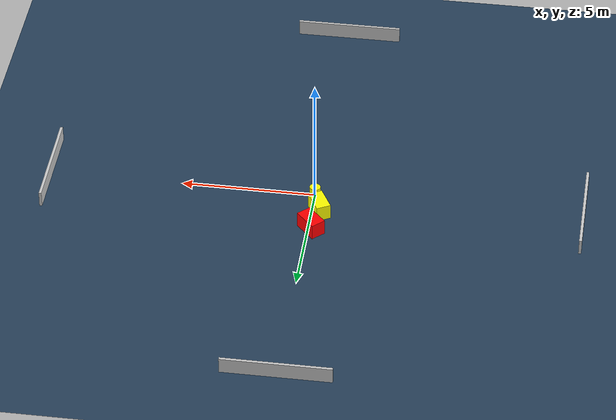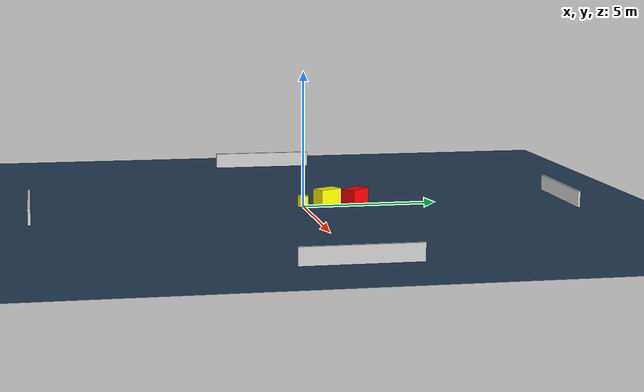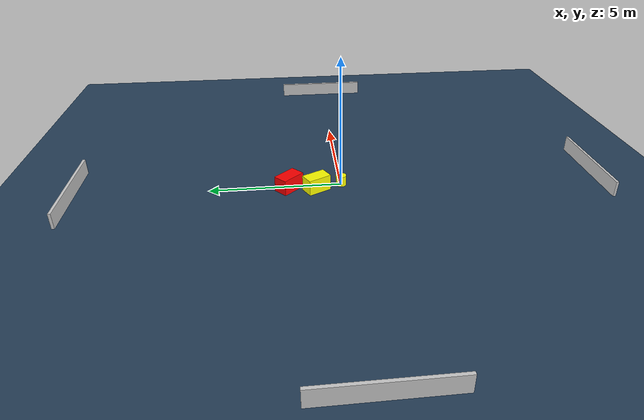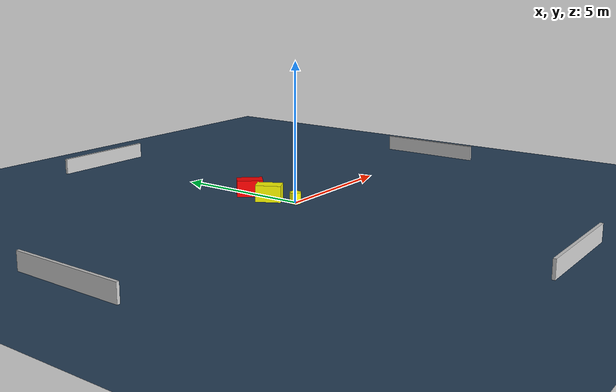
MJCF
<?xml version="1.0" ?>
<mujoco model="generated_environment">
  <option timestep="0.01" integrator="RK4" cone="elliptic"/>
  <default>
    <geom density="1"/>
  </default>
  <asset>
    <texture builtin="gradient" height="3072" name="skybox" rgb1="0.3 0.5 0.7" rgb2="0 0 0" type="skybox" width="512"/>
    <texture builtin="checker" height="300" name="groundplane" rgb1="0.2 0.3 0.4" rgb2="0.1 0.2 0.3" type="2d" width="300"/>
    <material name="groundplane" reflectance="0.2" texrepeat="5 5" texture="groundplane"/>
  </asset>
  <worldbody>
    <light dir="0 0 -1" directional="true" pos="0 0 1.5"/>
    <geom condim="3" friction="0.5 0.005 0.001" material="groundplane" name="floor" pos="0 0 0" size="0 0 0.05" type="plane"/>
    <body name="walls">
      <geom name="wall_1" condim="4" pos="-10.0 0.0 0.3" rgba="0.800000011920929 0.800000011920929 0.800000011920929 1.0" size="0.05 2.0 0.3" type="box"/>
      <geom name="wall_2" condim="4" pos="10.0 0.0 0.3" rgba="0.800000011920929 0.800000011920929 0.800000011920929 1.0" size="0.05 2.0 0.3" type="box"/>
      <geom name="wall_3" condim="4" pos="0.0 -10.0 0.3" rgba="0.800000011920929 0.800000011920929 0.800000011920929 1.0" size="2.0 0.05 0.3" type="box"/>
      <geom name="wall_4" condim="4" pos="0.0 10.0 0.3" rgba="0.800000011920929 0.800000011920929 0.800000011920929 1.0" size="2.0 0.05 0.3" type="box"/>
    </body>
    <body name="robot">
      <joint name="joint_x" type="slide" pos="0 0 0" axis="1 0 0"/>
      <joint name="joint_y" type="slide" pos="0 0 0" axis="0 1 0"/>
      <geom name="robot" type="cylinder" pos="0.0 0.0 0.2" size="0.2 0.2 0.0" mass="5.0" friction="1.0 0.005 0.0001" condim="4" rgba="1.0 1.0 0.0 1.0"/>
    </body>
    <body name="obstacle_1_movable">
      <geom name="obstacle_1_movable" condim="4" pos="-0.2872410885223962 0.9567867878171007 0.3" euler="0 0 208.18103959080483" friction="0.0 0.005 0.001" rgba="1.0 1.0 0.0 1.0" size="0.27035310321065437 0.4595306561950956 0.3" type="box" mass="0.1"/>
      <joint type="free"/>
    </body>
    <body name="obstacle_2_static">
      <geom name="obstacle_2_static" condim="4" pos="-0.11762165616094102 1.9890452410630333 0.3" euler="0 0 133.0579726314187" friction="0.0 0.005 0.001" rgba="1.0 0.0 0.0 1.0" size="0.4695828449539444 0.2829177196401792 0.3" type="box"/>
    </body>
  </worldbody>
  <actuator>
    <motor name="actuator_x" joint="joint_x" gear="1" ctrlrange="-1 1"/>
    <motor name="actuator_y" joint="joint_y" gear="1" ctrlrange="-1 1"/>
  </actuator>
</mujoco>
